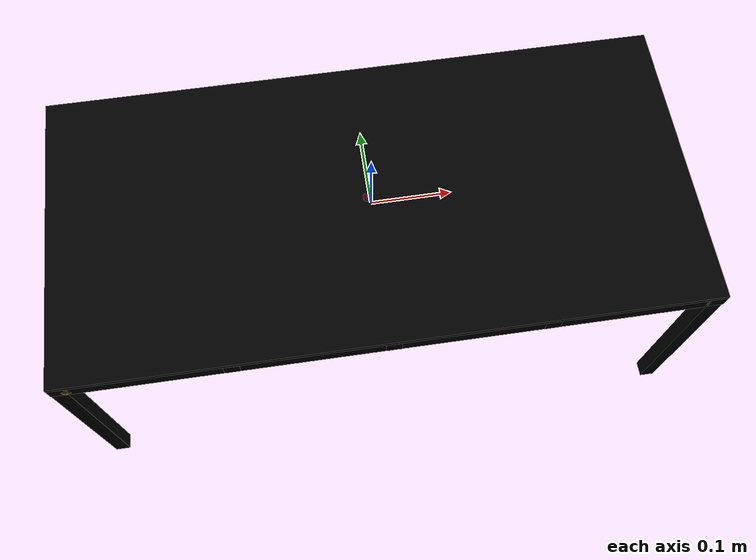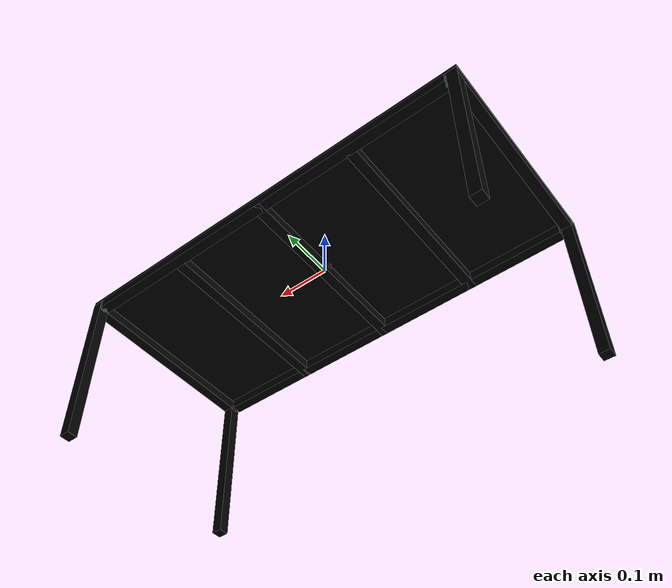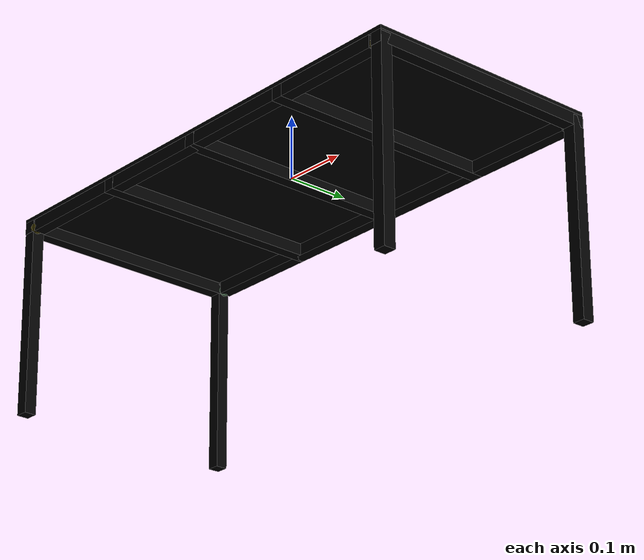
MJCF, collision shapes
<mujoco model="table_torsby_1549">
  <custom>
    <numeric data="0.06762 0.214951 0.009789 1 0 0 0" name="0_part0_initpos" />
    <numeric data="0.022888 -0.22714 0.002904 0 0 -1 0" name="3_part3_initpos" />
    <numeric data="0.653362 0.202809 0.009636 0.707105 -0.000293 -0.707108 -0.000293" name="2_part2_initpos" />
    <numeric data="-0.544775 0.237335 0.009636 -0.000293 -0.707105 0.000293 -0.707105" name="1_part1_initpos" />
  </custom>
  <asset>
    <mesh file="table_torsby_1549/0.stl" name="part0" scale="0.00044 0.00044 0.00044" />
    <mesh file="table_torsby_1549/3.stl" name="part3" scale="0.00044 0.00044 0.00044" />
    <mesh file="table_torsby_1549/2.stl" name="part2" scale="0.00044 0.00044 0.00044" />
    <mesh file="table_torsby_1549/1.stl" name="part1" scale="0.00044 0.00044 0.00044" />
  </asset>
  <equality>
    <weld active="false" body1="0_part0" body2="3_part3" solimp="1 1 0.5" solref="0.01 0.3" />
    <weld active="false" body1="0_part0" body2="2_part2" solimp="1 1 0.5" solref="0.01 0.3" />
    <weld active="false" body1="0_part0" body2="1_part1" solimp="1 1 0.5" solref="0.01 0.3" />
    <weld active="false" body1="0_part0" body2="2_part2" solimp="1 1 0.5" solref="0.01 0.3" />
    <weld active="false" body1="0_part0" body2="1_part1" solimp="1 1 0.5" solref="0.01 0.3" />
  </equality>
  <worldbody>
    <body name="0_part0" pos="0.0 0.0 0.0" quat="1 0 0 0">
      <geom conaffinity="0" contype="0" density="0" mesh="part0" name="0_part0_mesh" pos="0.0 0.0 0.0" rgba="0.82 0.71 0.55 1" type="mesh" />
      <site name="0_part0_horizontal_radius_site" pos="0.0 0.0 0.0" quat="1 0 0 0" rgba="0 0 0 0" size="0.00044" />
      <site name="0_part0_top_site" pos="0.0 0.0 0.0097953174" quat="1 0 0 0" rgba="0 0 0 0" size="0.00044" />
      <site name="0_part0_bottom_site" pos="0.0 0.0 -0.0097953174" quat="1 0 0 0" rgba="0 0 0 0" size="0.00044" />
      <site name="0_part0_corner_site8" pos="-0.37745569250399996 0.18999200000000002 0.0097953174" quat="1 0 0 0" rgba="0 0 0 0" size="0.0088" />
      <site name="0_part0_corner_site7" pos="0.37745569250399996 0.18999200000000002 0.0097953174" quat="1 0 0 0" rgba="0 0 0 0" size="0.0088" />
      <site name="0_part0_corner_site6" pos="0.37745569250399996 -0.18999200000000002 0.0097953174" quat="1 0 0 0" rgba="0 0 0 0" size="0.0088" />
      <site name="0_part0_corner_site5" pos="-0.37745569250399996 -0.18999200000000002 0.0097953174" quat="1 0 0 0" rgba="0 0 0 0" size="0.0088" />
      <site name="0_part0_corner_site4" pos="-0.37745569250399996 0.18999200000000002 -0.0097953174" quat="1 0 0 0" rgba="0 0 0 0" size="0.0088" />
      <site name="0_part0_corner_site3" pos="0.37745569250399996 0.18999200000000002 -0.0097953174" quat="1 0 0 0" rgba="0 0 0 0" size="0.0088" />
      <site name="0_part0_corner_site2" pos="0.37745569250399996 -0.18999200000000002 -0.0097953174" quat="1 0 0 0" rgba="0 0 0 0" size="0.0088" />
      <site name="0_part0_corner_site1" pos="-0.37745569250399996 -0.18999200000000002 -0.0097953174" quat="1 0 0 0" rgba="0 0 0 0" size="0.0088" />
      <geom density="50" name="noviz_collision_0_part0_0" pos="0.0 0.0 -0.00012960199999999998" quat="1 0 0 0" rgba="0 0 0 0" size="0.009460000000000001 0.18999200000000002 0.0096657132" solref="0.001 1" type="box" />
      <geom density="50" name="noviz_collision_0_part0_1" pos="-0.188496 0.0 -0.00012960199999999998" quat="1 0 0 0" rgba="0 0 0 0" size="0.009460000000000001 0.18999200000000002 0.0096657132" solref="0.001 1" type="box" />
      <geom density="50" name="noviz_collision_0_part0_2" pos="0.18876 0.0 -0.00012960199999999998" quat="1 0 0 0" rgba="0 0 0 0" size="0.009460000000000001 0.18999200000000002 0.0096657132" solref="0.001 1" type="box" />
      <geom density="50" name="noviz_collision_0_part0_3" pos="0.0 -0.1804 -0.00012960199999999998" quat="0.7071067 0 0 -0.7071068" rgba="0 0 0 0" size="0.009460000000000001 0.374 0.0096657132" solref="0.001 1" type="box" />
      <geom density="50" name="noviz_collision_0_part0_4" pos="0.0 0.18128000000000002 -0.00012960199999999998" quat="0.7071067 0 0 -0.7071068" rgba="0 0 0 0" size="0.009460000000000001 0.374 0.0096657132" solref="0.001 1" type="box" />
      <site name="Spine-Top,0,180,conn_site1" pos="-0.003960000000000001 0.0 0.009636" quat="1 0 0 0" rgba="0.9019 0.0980 0.2941 0.3" size="0.0088" />
      <site name="Spine1-Side,0,conn_site2" pos="0.37576 0.18216000000000002 -0.0030800000000000003" quat="0.7071067 0 0.7071068 0" rgba="0.2352 0.7058 0.2941 0.3" size="0.0088" />
      <site name="Spine2-Side,0,conn_site2" pos="0.37707999999999997 -0.180576 -0.002904" quat="0.7071067 0 0.7071068 0" rgba="1.0 0.8823 0.0980 0.3" size="0.0088" />
      <site name="Spine2-Side,0,conn_site1" pos="-0.377432 -0.183216 -0.002552" quat="0.7071067 0 -0.7071068 0" rgba="1.0 0.8823 0.0980 0.3" size="0.0088" />
      <site name="Spine1-Side,0,conn_site1" pos="-0.37532 0.18128000000000002 -0.00264" quat="0.7071067 0 -0.7071068 0" rgba="0.2352 0.7058 0.2941 0.3" size="0.0088" />
    </body>
    <body name="3_part3" pos="0.0 0.0 0.012729470468" quat="1 0 0 0">
      <geom conaffinity="0" contype="0" density="0" mesh="part3" name="3_part3_mesh" pos="0.0 0.0 0.0" rgba="0.82 0.71 0.55 1" type="mesh" />
      <site name="3_part3_horizontal_radius_site" pos="0.0 0.0 0.0" quat="1 0 0 0" rgba="0 0 0 0" size="0.00044" />
      <site name="3_part3_top_site" pos="0.0 0.0 0.0029341609" quat="1 0 0 0" rgba="0 0 0 0" size="0.00044" />
      <site name="3_part3_bottom_site" pos="0.0 0.0 -0.0029341609" quat="1 0 0 0" rgba="0 0 0 0" size="0.00044" />
      <site name="3_part3_corner_site8" pos="-0.39674800000000005 0.18999200000000002 0.0029341609" quat="1 0 0 0" rgba="0 0 0 0" size="0.0088" />
      <site name="3_part3_corner_site7" pos="0.39674800000000005 0.18999200000000002 0.0029341609" quat="1 0 0 0" rgba="0 0 0 0" size="0.0088" />
      <site name="3_part3_corner_site6" pos="0.39674800000000005 -0.18999200000000002 0.0029341609" quat="1 0 0 0" rgba="0 0 0 0" size="0.0088" />
      <site name="3_part3_corner_site5" pos="-0.39674800000000005 -0.18999200000000002 0.0029341609" quat="1 0 0 0" rgba="0 0 0 0" size="0.0088" />
      <site name="3_part3_corner_site4" pos="-0.39674800000000005 0.18999200000000002 -0.0029341609" quat="1 0 0 0" rgba="0 0 0 0" size="0.0088" />
      <site name="3_part3_corner_site3" pos="0.39674800000000005 0.18999200000000002 -0.0029341609" quat="1 0 0 0" rgba="0 0 0 0" size="0.0088" />
      <site name="3_part3_corner_site2" pos="0.39674800000000005 -0.18999200000000002 -0.0029341609" quat="1 0 0 0" rgba="0 0 0 0" size="0.0088" />
      <site name="3_part3_corner_site1" pos="-0.39674800000000005 -0.18999200000000002 -0.0029341609" quat="1 0 0 0" rgba="0 0 0 0" size="0.0088" />
      <geom density="50" name="noviz_collision_3_part3_0" pos="0.0 0.0 0.0" quat="1 0 0 0" rgba="0 0 0 0" size="0.39674800000000005 0.18999200000000002 0.0029341619999999997" solref="0.001 1" type="box" />
      <site name="Top-Spine,0,180,conn_site1" pos="-0.003960000000000001 0.0 -0.0030934684000000004" quat="1 0 0 0" rgba="0.9019 0.0980 0.2941 0.3" size="0.0088" />
    </body>
    <body name="2_part2" pos="0.387101843788 0.0 -0.1461196924" quat="1 0 0 0">
      <geom conaffinity="0" contype="0" density="0" mesh="part2" name="2_part2_mesh" pos="0.0 0.0 0.0" rgba="0.82 0.71 0.55 1" type="mesh" />
      <site name="2_part2_horizontal_radius_site" pos="-4.4e-11 0.0 0.0" quat="1 0 0 0" rgba="0 0 0 0" size="0.00044" />
      <site name="2_part2_top_site" pos="-4.4e-11 0.0 0.155915009756" quat="1 0 0 0" rgba="0 0 0 0" size="0.00044" />
      <site name="2_part2_bottom_site" pos="-4.4e-11 0.0 -0.155915009756" quat="1 0 0 0" rgba="0 0 0 0" size="0.00044" />
      <site name="2_part2_corner_site8" pos="-0.009646156256 0.18999200000000002 0.155915009756" quat="1 0 0 0" rgba="0 0 0 0" size="0.0088" />
      <site name="2_part2_corner_site7" pos="0.009646156168 0.18999200000000002 0.155915009756" quat="1 0 0 0" rgba="0 0 0 0" size="0.0088" />
      <site name="2_part2_corner_site6" pos="0.009646156168 -0.18999200000000002 0.155915009756" quat="1 0 0 0" rgba="0 0 0 0" size="0.0088" />
      <site name="2_part2_corner_site5" pos="-0.009646156256 -0.18999200000000002 0.155915009756" quat="1 0 0 0" rgba="0 0 0 0" size="0.0088" />
      <site name="2_part2_corner_site4" pos="-0.009646156256 0.18999200000000002 -0.155915009756" quat="1 0 0 0" rgba="0 0 0 0" size="0.0088" />
      <site name="2_part2_corner_site3" pos="0.009646156168 0.18999200000000002 -0.155915009756" quat="1 0 0 0" rgba="0 0 0 0" size="0.0088" />
      <site name="2_part2_corner_site2" pos="0.009646156168 -0.18999200000000002 -0.155915009756" quat="1 0 0 0" rgba="0 0 0 0" size="0.0088" />
      <site name="2_part2_corner_site1" pos="-0.009646156256 -0.18999200000000002 -0.155915009756" quat="1 0 0 0" rgba="0 0 0 0" size="0.0088" />
      <geom density="50" name="noviz_collision_2_part2_0" pos="2.19428e-05 -0.17996 3.96924e-05" quat="1 0 0 0" rgba="0 0 0 0" size="0.0096681024 0.009460000000000001 0.15400000000000003" solref="0.001 1" type="box" />
      <geom density="50" name="noviz_collision_2_part2_2" pos="2.19428e-05 0.18128000000000002 3.96924e-05" quat="1 0 0 0" rgba="0 0 0 0" size="0.0096681024 0.009460000000000001 0.15400000000000003" solref="0.001 1" type="box" />
      <geom density="50" name="noviz_collision_2_part2_1" pos="2.19428e-05 0.0 0.146999688" quat="1 0 0 0" rgba="0 0 0 0" size="0.0096681024 0.18999200000000002 0.009460000000000001" solref="0.001 1" type="box" />
      <site name="Side-Spine1,0,conn_site2" pos="-0.0113418448 0.18216000000000002 0.143039688" quat="0.7071067 0 0.7071068 0" rgba="0.2352 0.7058 0.2941 0.3" size="0.0088" />
      <site name="Side-Spine2,0,conn_site2" pos="-0.0100218448 -0.180576 0.143215688" quat="0.7071067 0 0.7071068 0" rgba="1.0 0.8823 0.0980 0.3" size="0.0088" />
    </body>
    <body name="1_part1" pos="-0.38710184392 0.0 -0.1461196924" quat="1 0 0 0">
      <geom conaffinity="0" contype="0" density="0" mesh="part1" name="1_part1_mesh" pos="0.0 0.0 0.0" rgba="0.82 0.71 0.55 1" type="mesh" />
      <site name="1_part1_horizontal_radius_site" pos="1.32e-10 0.0 0.0" quat="1 0 0 0" rgba="0 0 0 0" size="0.00044" />
      <site name="1_part1_top_site" pos="1.32e-10 0.0 0.155915009756" quat="1 0 0 0" rgba="0 0 0 0" size="0.00044" />
      <site name="1_part1_bottom_site" pos="1.32e-10 0.0 -0.155915009756" quat="1 0 0 0" rgba="0 0 0 0" size="0.0088" />
      <site name="1_part1_corner_site8" pos="-0.009646155948000001 0.18999200000000002 0.155915009756" quat="1 0 0 0" rgba="0 0 0 0" size="0.0088" />
      <site name="1_part1_corner_site7" pos="0.009646156256 0.18999200000000002 0.155915009756" quat="1 0 0 0" rgba="0 0 0 0" size="0.0088" />
      <site name="1_part1_corner_site6" pos="0.009646156256 -0.18999200000000002 0.155915009756" quat="1 0 0 0" rgba="0 0 0 0" size="0.0088" />
      <site name="1_part1_corner_site5" pos="-0.009646155948000001 -0.18999200000000002 0.155915009756" quat="1 0 0 0" rgba="0 0 0 0" size="0.0088" />
      <site name="1_part1_corner_site4" pos="-0.009646155948000001 0.18999200000000002 -0.155915009756" quat="1 0 0 0" rgba="0 0 0 0" size="0.0088" />
      <site name="1_part1_corner_site3" pos="0.009646156256 0.18999200000000002 -0.155915009756" quat="1 0 0 0" rgba="0 0 0 0" size="0.0088" />
      <site name="1_part1_corner_site2" pos="0.009646156256 -0.18999200000000002 -0.155915009756" quat="1 0 0 0" rgba="0 0 0 0" size="0.0088" />
      <site name="1_part1_corner_site1" pos="-0.009646155948000001 -0.18999200000000002 -0.155915009756" quat="1 0 0 0" rgba="0 0 0 0" size="0.0088" />
      <geom density="50" name="noviz_collision_1_part1_0" pos="2.19428e-05 -0.17996 3.96924e-05" quat="1 0 0 0" rgba="0 0 0 0" size="0.0096681024 0.009460000000000001 0.15400000000000003" solref="0.001 1" type="box" />
      <geom density="50" name="noviz_collision_1_part1_2" pos="2.19428e-05 0.18128000000000002 3.96924e-05" quat="1 0 0 0" rgba="0 0 0 0" size="0.0096681024 0.009460000000000001 0.15400000000000003" solref="0.001 1" type="box" />
      <geom density="50" name="noviz_collision_1_part1_1" pos="2.19428e-05 0.0 0.146999688" quat="1 0 0 0" rgba="0 0 0 0" size="0.0096681024 0.18999200000000002 0.009460000000000001" solref="0.001 1" type="box" />
      <site name="Side-Spine2,0,conn_site1" pos="0.009669849199999999 -0.183216 0.14356768800000003" quat="0.7071067 0 -0.7071068 0" rgba="1.0 0.8823 0.0980 0.3" size="0.0088" />
      <site name="Side-Spine1,0,conn_site1" pos="0.011781844800000002 0.18128000000000002 0.143479688" quat="0.7071067 0 -0.7071068 0" rgba="0.2352 0.7058 0.2941 0.3" size="0.0088" />
    </body>
  </worldbody>
  <actuator/>
  <sensor/>
  <contact/>
  <default/>
</mujoco>
